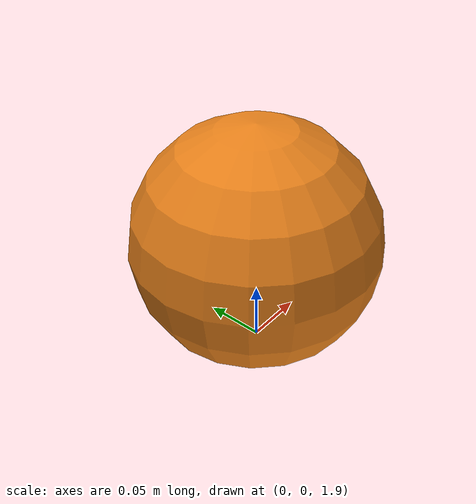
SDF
<?xml version="1.0" ?>
<sdf version="1.10">
  <world name="physics_config_demo">

    <physics type="ode">
      <!-- Simulation timestep: 1ms (1000 Hz) -->
      <max_step_size>0.001</max_step_size>

      <!-- Real-time factor: 1.0 means simulation runs at real-world speed -->
      <real_time_factor>1.0</real_time_factor>

      <!-- Target update rate in Hz -->
      <real_time_update_rate>1000</real_time_update_rate>

      <!-- ODE-specific settings -->
      <ode>
        <solver>
          <type>quick</type>
          <iters>50</iters>
          <sor>1.3</sor>
        </solver>
        <constraints>
          <cfm>0</cfm>
          <erp>0.2</erp>
          <contact_max_correcting_vel>100</contact_max_correcting_vel>
          <contact_surface_layer>0.001</contact_surface_layer>
        </constraints>
      </ode>
    </physics>

    <gravity>0 0 -9.81</gravity>

    <!-- Lighting -->
    <light type="directional" name="sun">
      <cast_shadows>true</cast_shadows>
      <pose>0 0 10 0 0 0</pose>
      <diffuse>0.8 0.8 0.8 1</diffuse>
      <specular>0.2 0.2 0.2 1</specular>
      <direction>-0.5 0.1 -0.9</direction>
    </light>

    <!-- Ground Plane -->
    <model name="ground_plane">
      <static>true</static>
      <link name="link">
        <collision name="collision">
          <geometry>
            <plane>
              <normal>0 0 1</normal>
              <size>100 100</size>
            </plane>
          </geometry>
        </collision>
        <visual name="visual">
          <geometry>
            <plane>
              <normal>0 0 1</normal>
              <size>100 100</size>
            </plane>
          </geometry>
          <material>
            <ambient>0.7 0.7 0.7 1</ambient>
            <diffuse>0.7 0.7 0.7 1</diffuse>
          </material>
        </visual>
      </link>
    </model>

    <!-- Test object: Drop from height to verify gravity -->
    <model name="test_sphere">
      <pose>0 0 2 0 0 0</pose>
      <link name="link">
        <inertial>
          <mass>1.0</mass>
          <inertia>
            <ixx>0.004</ixx>
            <iyy>0.004</iyy>
            <izz>0.004</izz>
          </inertia>
        </inertial>
        <collision name="collision">
          <geometry>
            <sphere>
              <radius>0.1</radius>
            </sphere>
          </geometry>
          <surface>
            <bounce>
              <restitution_coefficient>0.5</restitution_coefficient>
              <threshold>0.01</threshold>
            </bounce>
          </surface>
        </collision>
        <visual name="visual">
          <geometry>
            <sphere>
              <radius>0.1</radius>
            </sphere>
          </geometry>
          <material>
            <ambient>0.9 0.5 0.1 1</ambient>
            <diffuse>0.9 0.5 0.1 1</diffuse>
          </material>
        </visual>
      </link>
    </model>

  </world>
</sdf>
